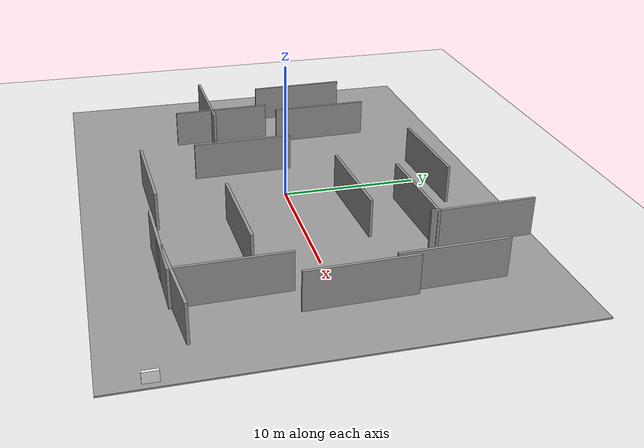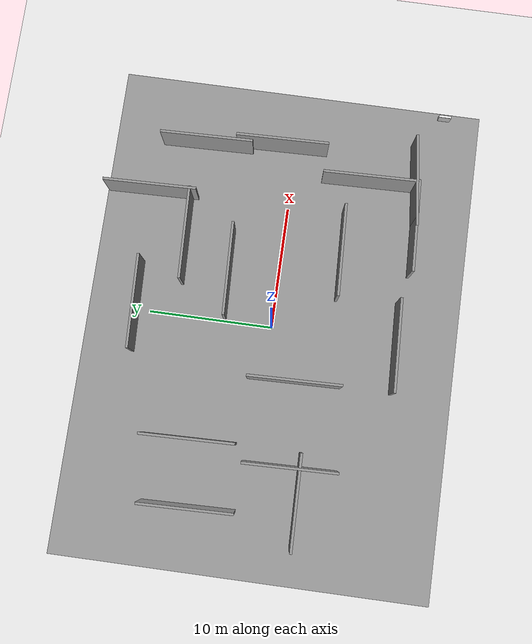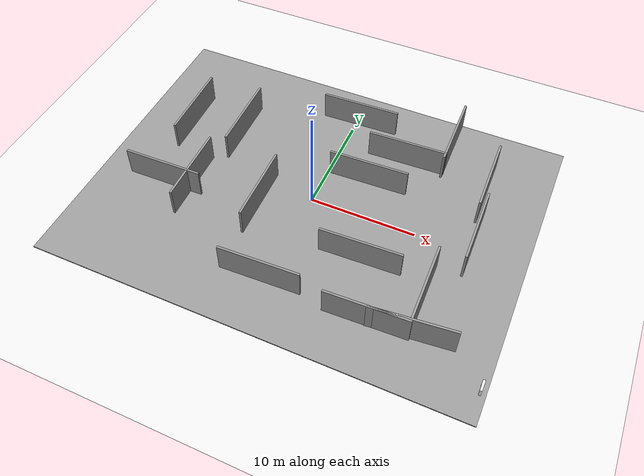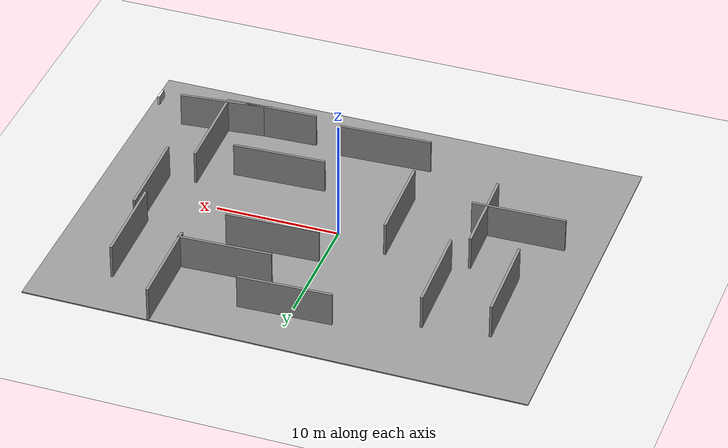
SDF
<sdf version='1.7'>
  <world name='default'>
    <light name='sun' type='directional'>
      <cast_shadows>1</cast_shadows>
      <pose>0 0 10 0 -0 0</pose>
      <diffuse>0.8 0.8 0.8 1</diffuse>
      <specular>0.2 0.2 0.2 1</specular>
      <attenuation>
        <range>1000</range>
        <constant>0.9</constant>
        <linear>0.01</linear>
        <quadratic>0.001</quadratic>
      </attenuation>
      <direction>-0.5 0.1 -0.9</direction>
      <spot>
        <inner_angle>0</inner_angle>
        <outer_angle>0</outer_angle>
        <falloff>0</falloff>
      </spot>
    </light>
    <model name='ground_plane'>
      <static>1</static>
      <link name='link'>
        <collision name='collision'>
          <geometry>
            <plane>
              <normal>0 0 1</normal>
              <size>100 100</size>
            </plane>
          </geometry>
          <surface>
            <friction>
              <ode>
                <mu>100</mu>
                <mu2>50</mu2>
              </ode>
              <torsional>
                <ode/>
              </torsional>
            </friction>
            <contact>
              <ode/>
            </contact>
            <bounce/>
          </surface>
          <max_contacts>10</max_contacts>
        </collision>
        <visual name='visual'>
          <cast_shadows>0</cast_shadows>
          <geometry>
            <plane>
              <normal>0 0 1</normal>
              <size>100 100</size>
            </plane>
          </geometry>
          <material>
            <script>
              <uri>file://media/materials/scripts/gazebo.material</uri>
              <name>Gazebo/White</name>
            </script>
          </material>
        </visual>
        <self_collide>0</self_collide>
        <enable_wind>0</enable_wind>
        <kinematic>0</kinematic>
      </link>
    </model>
    <gravity>0 0 -9.8</gravity>
    <magnetic_field>6e-06 2.3e-05 -4.2e-05</magnetic_field>
    <atmosphere type='adiabatic'/>
    <physics type='ode'>
      <max_step_size>0.001</max_step_size>
      <real_time_factor>1</real_time_factor>
      <real_time_update_rate>1000</real_time_update_rate>
    </physics>
    <scene>
      <ambient>0.4 0.4 0.4 1</ambient>
      <background>0.7 0.7 0.7 1</background>
      <shadows>1</shadows>
    </scene>
    <audio>
      <device>default</device>
    </audio>
    <wind/>
    <spherical_coordinates>
      <surface_model>EARTH_WGS84</surface_model>
      <latitude_deg>0</latitude_deg>
      <longitude_deg>0</longitude_deg>
      <elevation>0</elevation>
      <heading_deg>0</heading_deg>
    </spherical_coordinates>
    <model name='floor'>
      <pose>-0 0 0.05 0 -0 0</pose>
      <static>1</static>
      <link name='link'>
        <inertial>
          <mass>1</mass>
          <inertia>
            <ixx>0.166667</ixx>
            <ixy>0</ixy>
            <ixz>0</ixz>
            <iyy>0.166667</iyy>
            <iyz>0</iyz>
            <izz>0.166667</izz>
          </inertia>
          <pose>0 0 0 0 -0 0</pose>
        </inertial>
        <collision name='collision'>
          <geometry>
            <box>
              <size>40 30 0.1</size>
            </box>
          </geometry>
          <max_contacts>10</max_contacts>
          <surface>
            <contact>
              <ode/>
            </contact>
            <bounce/>
            <friction>
              <torsional>
                <ode/>
              </torsional>
              <ode/>
            </friction>
          </surface>
        </collision>
        <visual name='visual'>
          <geometry>
            <box>
              <size>40 30 0.1</size>
            </box>
          </geometry>
          <material>
            <script>
              <name>Gazebo/Grey</name>
              <uri>file://media/materials/scripts/gazebo.material</uri>
            </script>
          </material>
        </visual>
        <self_collide>0</self_collide>
        <enable_wind>0</enable_wind>
        <kinematic>0</kinematic>
      </link>
    </model>
    <gui fullscreen='0'>
      <camera name='user_camera'>
        <pose>13.004 -21.2315 1.72265 0 0.037796 0.929038</pose>
        <view_controller>orbit</view_controller>
        <projection_type>perspective</projection_type>
      </camera>
    </gui>
    <model name='grey_wall'>
      <static>1</static>
      <link name='link'>
        <pose>0 0 1.4 0 -0 0.1</pose>
        <collision name='collision'>
          <geometry>
            <box>
              <size>7.5 0.2 2.8</size>
            </box>
          </geometry>
          <max_contacts>10</max_contacts>
          <surface>
            <contact>
              <ode/>
            </contact>
            <bounce/>
            <friction>
              <torsional>
                <ode/>
              </torsional>
              <ode/>
            </friction>
          </surface>
        </collision>
        <visual name='visual'>
          <cast_shadows>0</cast_shadows>
          <geometry>
            <box>
              <size>7.5 0.2 2.8</size>
            </box>
          </geometry>
          <material>
            <script>
              <uri>model://grey_wall/materials/scripts</uri>
              <uri>model://grey_wall/materials/textures</uri>
              <name>vrc/grey_wall</name>
            </script>
          </material>
        </visual>
        <self_collide>0</self_collide>
        <enable_wind>0</enable_wind>
        <kinematic>0</kinematic>
      </link>
      <pose>13.0394 -9.9935 0.1 0 -0 0</pose>
    </model>
    <model name='grey_wall_clone'>
      <static>1</static>
      <link name='link'>
        <pose>0 0 1.4 0 -0 0.1</pose>
        <collision name='collision'>
          <geometry>
            <box>
              <size>7.5 0.2 2.8</size>
            </box>
          </geometry>
          <max_contacts>10</max_contacts>
          <surface>
            <contact>
              <ode/>
            </contact>
            <bounce/>
            <friction>
              <torsional>
                <ode/>
              </torsional>
              <ode/>
            </friction>
          </surface>
        </collision>
        <visual name='visual'>
          <cast_shadows>0</cast_shadows>
          <geometry>
            <box>
              <size>7.5 0.2 2.8</size>
            </box>
          </geometry>
          <material>
            <script>
              <uri>model://grey_wall/materials/scripts</uri>
              <uri>model://grey_wall/materials/textures</uri>
              <name>vrc/grey_wall</name>
            </script>
          </material>
        </visual>
        <self_collide>0</self_collide>
        <enable_wind>0</enable_wind>
        <kinematic>0</kinematic>
      </link>
      <pose>-13.3371 -3.69551 0.1 0 0 -0.080153</pose>
    </model>

    <model name='left_dir_sign'>
      <static>1</static>
      <pose>19.5 -12 0.45 0 0 0</pose>
      <link name='link'>
        <inertial>
          <mass>1</mass>
          <inertia>
            <ixx>0.166667</ixx>
            <ixy>0</ixy>
            <ixz>0</ixz>
            <iyy>0.166667</iyy>
            <iyz>0</iyz>
            <izz>0.166667</izz>
          </inertia>
          <pose>0 0 0 0 -0 0</pose>
        </inertial>
        <collision name='collision'>
          <geometry>
            <box>
              <size>0.2 1 0.8</size>
            </box>
          </geometry>
          <max_contacts>10</max_contacts>
          <surface>
            <contact>
              <ode/>
            </contact>
            <bounce/>
            <friction>
              <torsional>
                <ode/>
              </torsional>
              <ode/>
            </friction>
          </surface>
        </collision>
        <visual name='visual_body'>
          <geometry>
            <box>
              <size>0.2 1 0.8</size>
            </box>
          </geometry>
          <material>
            <script>
              <name>Gazebo/White</name>
              <uri>file://media/materials/scripts/gazebo.material</uri>
            </script>
          </material>
        </visual>
        <visual name='front_face'>
          <geometry>
            <box>
              <size>0.01 1 0.8</size>
            </box>
          </geometry>
          <material>
            <script>
              <uri>model://arrow_detection/worlds/map_1_materials</uri>
              <name>right/Diffuse</name>
            </script>
          </material>
          <pose>-0.101 0 0 3.14  0 0</pose>
        </visual>

        <self_collide>0</self_collide>
        <enable_wind>0</enable_wind>
        <kinematic>0</kinematic>
      </link>

    </model>

    <model name='grey_wall_clone_clone'>
      <static>1</static>
      <link name='link'>
        <pose>0 0 1.4 0 -0 0.1</pose>
        <collision name='collision'>
          <geometry>
            <box>
              <size>7.5 0.2 2.8</size>
            </box>
          </geometry>
          <max_contacts>10</max_contacts>
          <surface>
            <contact>
              <ode/>
            </contact>
            <bounce/>
            <friction>
              <torsional>
                <ode/>
              </torsional>
              <ode/>
            </friction>
          </surface>
        </collision>
        <visual name='visual'>
          <cast_shadows>0</cast_shadows>
          <geometry>
            <box>
              <size>7.5 0.2 2.8</size>
            </box>
          </geometry>
          <material>
            <script>
              <uri>model://grey_wall/materials/scripts</uri>
              <uri>model://grey_wall/materials/textures</uri>
              <name>vrc/grey_wall</name>
            </script>
          </material>
        </visual>
        <self_collide>0</self_collide>
        <enable_wind>0</enable_wind>
        <kinematic>0</kinematic>
      </link>
      <pose>-14.8753 4.60534 0.1 0 0 -1.64658</pose>
    </model>
    <model name='grey_wall_clone_clone_clone'>
      <static>1</static>
      <link name='link'>
        <pose>0 0 1.4 0 -0 0.1</pose>
        <collision name='collision'>
          <geometry>
            <box>
              <size>7.5 0.2 2.8</size>
            </box>
          </geometry>
          <max_contacts>10</max_contacts>
          <surface>
            <contact>
              <ode/>
            </contact>
            <bounce/>
            <friction>
              <torsional>
                <ode/>
              </torsional>
              <ode/>
            </friction>
          </surface>
        </collision>
        <visual name='visual'>
          <cast_shadows>0</cast_shadows>
          <geometry>
            <box>
              <size>7.5 0.2 2.8</size>
            </box>
          </geometry>
          <material>
            <script>
              <uri>model://grey_wall/materials/scripts</uri>
              <uri>model://grey_wall/materials/textures</uri>
              <name>vrc/grey_wall</name>
            </script>
          </material>
        </visual>
        <self_collide>0</self_collide>
        <enable_wind>0</enable_wind>
        <kinematic>0</kinematic>
      </link>
      <pose>-9.68074 5.24499 0.1 0 0 -1.64658</pose>
    </model>
    <model name='grey_wall_clone_clone_clone_0'>
      <static>1</static>
      <link name='link'>
        <pose>0 0 1.4 0 -0 0.1</pose>
        <collision name='collision'>
          <geometry>
            <box>
              <size>7.5 0.2 2.8</size>
            </box>
          </geometry>
          <max_contacts>10</max_contacts>
          <surface>
            <contact>
              <ode/>
            </contact>
            <bounce/>
            <friction>
              <torsional>
                <ode/>
              </torsional>
              <ode/>
            </friction>
          </surface>
        </collision>
        <visual name='visual'>
          <cast_shadows>0</cast_shadows>
          <geometry>
            <box>
              <size>7.5 0.2 2.8</size>
            </box>
          </geometry>
          <material>
            <script>
              <uri>model://grey_wall/materials/scripts</uri>
              <uri>model://grey_wall/materials/textures</uri>
              <name>vrc/grey_wall</name>
            </script>
          </material>
        </visual>
        <self_collide>0</self_collide>
        <enable_wind>0</enable_wind>
        <kinematic>0</kinematic>
      </link>
      <pose>-4.16896 -2.3534 0.1 0 0 -1.64658</pose>
    </model>
    <model name='grey_wall_clone_clone_clone_1'>
      <static>1</static>
      <link name='link'>
        <pose>0 0 1.4 0 -0 0.1</pose>
        <collision name='collision'>
          <geometry>
            <box>
              <size>7.5 0.2 2.8</size>
            </box>
          </geometry>
          <max_contacts>10</max_contacts>
          <surface>
            <contact>
              <ode/>
            </contact>
            <bounce/>
            <friction>
              <torsional>
                <ode/>
              </torsional>
              <ode/>
            </friction>
          </surface>
        </collision>
        <visual name='visual'>
          <cast_shadows>0</cast_shadows>
          <geometry>
            <box>
              <size>7.5 0.2 2.8</size>
            </box>
          </geometry>
          <material>
            <script>
              <uri>model://grey_wall/materials/scripts</uri>
              <uri>model://grey_wall/materials/textures</uri>
              <name>vrc/grey_wall</name>
            </script>
          </material>
        </visual>
        <self_collide>0</self_collide>
        <enable_wind>0</enable_wind>
        <kinematic>0</kinematic>
      </link>
      <pose>-10.8188 -2.87486 0.1 0 0 -1.64658</pose>
    </model>
    <model name='grey_wall_clone_0'>
      <static>1</static>
      <link name='link'>
        <pose>0 0 1.4 0 -0 0.1</pose>
        <collision name='collision'>
          <geometry>
            <box>
              <size>7.5 0.2 2.8</size>
            </box>
          </geometry>
          <max_contacts>10</max_contacts>
          <surface>
            <contact>
              <ode/>
            </contact>
            <bounce/>
            <friction>
              <torsional>
                <ode/>
              </torsional>
              <ode/>
            </friction>
          </surface>
        </collision>
        <visual name='visual'>
          <cast_shadows>0</cast_shadows>
          <geometry>
            <box>
              <size>7.5 0.2 2.8</size>
            </box>
          </geometry>
          <material>
            <script>
              <uri>model://grey_wall/materials/scripts</uri>
              <uri>model://grey_wall/materials/textures</uri>
              <name>vrc/grey_wall</name>
            </script>
          </material>
        </visual>
        <self_collide>0</self_collide>
        <enable_wind>0</enable_wind>
        <kinematic>0</kinematic>
      </link>
      <pose>-0.375656 -9.97704 0.1 0 0 -0.062574</pose>
    </model>
    <model name='grey_wall_clone_1'>
      <static>1</static>
      <link name='link'>
        <pose>0 0 1.4 0 -0 0.1</pose>
        <collision name='collision'>
          <geometry>
            <box>
              <size>7.5 0.2 2.8</size>
            </box>
          </geometry>
          <max_contacts>10</max_contacts>
          <surface>
            <contact>
              <ode/>
            </contact>
            <bounce/>
            <friction>
              <torsional>
                <ode/>
              </torsional>
              <ode/>
            </friction>
          </surface>
        </collision>
        <visual name='visual'>
          <cast_shadows>0</cast_shadows>
          <geometry>
            <box>
              <size>7.5 0.2 2.8</size>
            </box>
          </geometry>
          <material>
            <script>
              <uri>model://grey_wall/materials/scripts</uri>
              <uri>model://grey_wall/materials/textures</uri>
              <name>vrc/grey_wall</name>
            </script>
          </material>
        </visual>
        <self_collide>0</self_collide>
        <enable_wind>0</enable_wind>
        <kinematic>0</kinematic>
      </link>
      <pose>9.31794 -10.3288 0.1 0 0 -0.062574</pose>
    </model>
    <model name='grey_wall_clone_clone_clone_0_clone'>
      <static>1</static>
      <link name='link'>
        <pose>0 0 1.4 0 -0 0.1</pose>
        <collision name='collision'>
          <geometry>
            <box>
              <size>7.5 0.2 2.8</size>
            </box>
          </geometry>
          <max_contacts>10</max_contacts>
          <surface>
            <contact>
              <ode/>
            </contact>
            <bounce/>
            <friction>
              <torsional>
                <ode/>
              </torsional>
              <ode/>
            </friction>
          </surface>
        </collision>
        <visual name='visual'>
          <cast_shadows>0</cast_shadows>
          <geometry>
            <box>
              <size>7.5 0.2 2.8</size>
            </box>
          </geometry>
          <material>
            <script>
              <uri>model://grey_wall/materials/scripts</uri>
              <uri>model://grey_wall/materials/textures</uri>
              <name>vrc/grey_wall</name>
            </script>
          </material>
        </visual>
        <self_collide>0</self_collide>
        <enable_wind>0</enable_wind>
        <kinematic>0</kinematic>
      </link>
      <pose>12.8518 -6.21682 0.1 0 0 -1.64658</pose>
    </model>
    <model name='grey_wall_clone_clone_clone_0_clone_0'>
      <static>1</static>
      <link name='link'>
        <pose>0 0 1.4 0 -0 0.1</pose>
        <collision name='collision'>
          <geometry>
            <box>
              <size>7.5 0.2 2.8</size>
            </box>
          </geometry>
          <max_contacts>10</max_contacts>
          <surface>
            <contact>
              <ode/>
            </contact>
            <bounce/>
            <friction>
              <torsional>
                <ode/>
              </torsional>
              <ode/>
            </friction>
          </surface>
        </collision>
        <visual name='visual'>
          <cast_shadows>0</cast_shadows>
          <geometry>
            <box>
              <size>7.5 0.2 2.8</size>
            </box>
          </geometry>
          <material>
            <script>
              <uri>model://grey_wall/materials/scripts</uri>
              <uri>model://grey_wall/materials/textures</uri>
              <name>vrc/grey_wall</name>
            </script>
          </material>
        </visual>
        <self_collide>0</self_collide>
        <enable_wind>0</enable_wind>
        <kinematic>0</kinematic>
      </link>
      <pose>14.9851 1.12641 0.1 0 0 -1.64658</pose>
    </model>
    <model name='grey_wall_clone_clone_clone_0_clone_1'>
      <static>1</static>
      <link name='link'>
        <pose>0 0 1.4 0 -0 0.1</pose>
        <collision name='collision'>
          <geometry>
            <box>
              <size>7.5 0.2 2.8</size>
            </box>
          </geometry>
          <max_contacts>10</max_contacts>
          <surface>
            <contact>
              <ode/>
            </contact>
            <bounce/>
            <friction>
              <torsional>
                <ode/>
              </torsional>
              <ode/>
            </friction>
          </surface>
        </collision>
        <visual name='visual'>
          <cast_shadows>0</cast_shadows>
          <geometry>
            <box>
              <size>7.5 0.2 2.8</size>
            </box>
          </geometry>
          <material>
            <script>
              <uri>model://grey_wall/materials/scripts</uri>
              <uri>model://grey_wall/materials/textures</uri>
              <name>vrc/grey_wall</name>
            </script>
          </material>
        </visual>
        <self_collide>0</self_collide>
        <enable_wind>0</enable_wind>
        <kinematic>0</kinematic>
      </link>
      <pose>14.3876 7.24044 0.1 0 0 -1.64658</pose>
    </model>
    <model name='grey_wall_clone_2'>
      <static>1</static>
      <link name='link'>
        <pose>0 0 1.4 0 -0 0.1</pose>
        <collision name='collision'>
          <geometry>
            <box>
              <size>7.5 0.2 2.8</size>
            </box>
          </geometry>
          <max_contacts>10</max_contacts>
          <surface>
            <contact>
              <ode/>
            </contact>
            <bounce/>
            <friction>
              <torsional>
                <ode/>
              </torsional>
              <ode/>
            </friction>
          </surface>
        </collision>
        <visual name='visual'>
          <cast_shadows>0</cast_shadows>
          <geometry>
            <box>
              <size>7.5 0.2 2.8</size>
            </box>
          </geometry>
          <material>
            <script>
              <uri>model://grey_wall/materials/scripts</uri>
              <uri>model://grey_wall/materials/textures</uri>
              <name>vrc/grey_wall</name>
            </script>
          </material>
        </visual>
        <self_collide>0</self_collide>
        <enable_wind>0</enable_wind>
        <kinematic>0</kinematic>
      </link>
      <pose>6.31492 7.83301 0.1 0 0 -0.062574</pose>
    </model>
    <model name='grey_wall_clone_3'>
      <static>1</static>
      <link name='link'>
        <pose>0 0 1.4 0 -0 0.1</pose>
        <collision name='collision'>
          <geometry>
            <box>
              <size>7.5 0.2 2.8</size>
            </box>
          </geometry>
          <max_contacts>10</max_contacts>
          <surface>
            <contact>
              <ode/>
            </contact>
            <bounce/>
            <friction>
              <torsional>
                <ode/>
              </torsional>
              <ode/>
            </friction>
          </surface>
        </collision>
        <visual name='visual'>
          <cast_shadows>0</cast_shadows>
          <geometry>
            <box>
              <size>7.5 0.2 2.8</size>
            </box>
          </geometry>
          <material>
            <script>
              <uri>model://grey_wall/materials/scripts</uri>
              <uri>model://grey_wall/materials/textures</uri>
              <name>vrc/grey_wall</name>
            </script>
          </material>
        </visual>
        <self_collide>0</self_collide>
        <enable_wind>0</enable_wind>
        <kinematic>0</kinematic>
      </link>
      <pose>3.90031 3.97684 0.1 0 0 -0.062574</pose>
    </model>
    <model name='grey_wall_clone_clone_clone_0_clone_clone'>
      <static>1</static>
      <link name='link'>
        <pose>0 0 1.4 0 -0 0.1</pose>
        <collision name='collision'>
          <geometry>
            <box>
              <size>7.5 0.2 2.8</size>
            </box>
          </geometry>
          <max_contacts>10</max_contacts>
          <surface>
            <contact>
              <ode/>
            </contact>
            <bounce/>
            <friction>
              <torsional>
                <ode/>
              </torsional>
              <ode/>
            </friction>
          </surface>
        </collision>
        <visual name='visual'>
          <cast_shadows>0</cast_shadows>
          <geometry>
            <box>
              <size>7.5 0.2 2.8</size>
            </box>
          </geometry>
          <material>
            <script>
              <uri>model://grey_wall/materials/scripts</uri>
              <uri>model://grey_wall/materials/textures</uri>
              <name>vrc/grey_wall</name>
            </script>
          </material>
        </visual>
        <self_collide>0</self_collide>
        <enable_wind>0</enable_wind>
        <kinematic>0</kinematic>
      </link>
      <pose>9.84942 11.1782 0.1 0 0 -1.64658</pose>
    </model>
    <model name='grey_wall_clone_2_clone'>
      <static>1</static>
      <link name='link'>
        <pose>0 0 1.4 0 -0 0.1</pose>
        <collision name='collision'>
          <geometry>
            <box>
              <size>7.5 0.2 2.8</size>
            </box>
          </geometry>
          <max_contacts>10</max_contacts>
          <surface>
            <contact>
              <ode/>
            </contact>
            <bounce/>
            <friction>
              <torsional>
                <ode/>
              </torsional>
              <ode/>
            </friction>
          </surface>
        </collision>
        <visual name='visual'>
          <cast_shadows>0</cast_shadows>
          <geometry>
            <box>
              <size>7.5 0.2 2.8</size>
            </box>
          </geometry>
          <material>
            <script>
              <uri>model://grey_wall/materials/scripts</uri>
              <uri>model://grey_wall/materials/textures</uri>
              <name>vrc/grey_wall</name>
            </script>
          </material>
        </visual>
        <self_collide>0</self_collide>
        <enable_wind>0</enable_wind>
        <kinematic>0</kinematic>
      </link>
      <pose>0.32639 11.0034 0.1 0 0 -0.062574</pose>
    </model>
    <model name='grey_wall_clone_3_clone'>
      <static>1</static>
      <link name='link'>
        <pose>0 0 1.4 0 -0 0.1</pose>
        <collision name='collision'>
          <geometry>
            <box>
              <size>7.5 0.2 2.8</size>
            </box>
          </geometry>
          <max_contacts>10</max_contacts>
          <surface>
            <contact>
              <ode/>
            </contact>
            <bounce/>
            <friction>
              <torsional>
                <ode/>
              </torsional>
              <ode/>
            </friction>
          </surface>
        </collision>
        <visual name='visual'>
          <cast_shadows>0</cast_shadows>
          <geometry>
            <box>
              <size>7.5 0.2 2.8</size>
            </box>
          </geometry>
          <material>
            <script>
              <uri>model://grey_wall/materials/scripts</uri>
              <uri>model://grey_wall/materials/textures</uri>
              <name>vrc/grey_wall</name>
            </script>
          </material>
        </visual>
        <self_collide>0</self_collide>
        <enable_wind>0</enable_wind>
        <kinematic>0</kinematic>
      </link>
      <pose>6.58399 -4.73597 0.1 0 0 -0.062574</pose>
    </model>

  </world>
</sdf>
